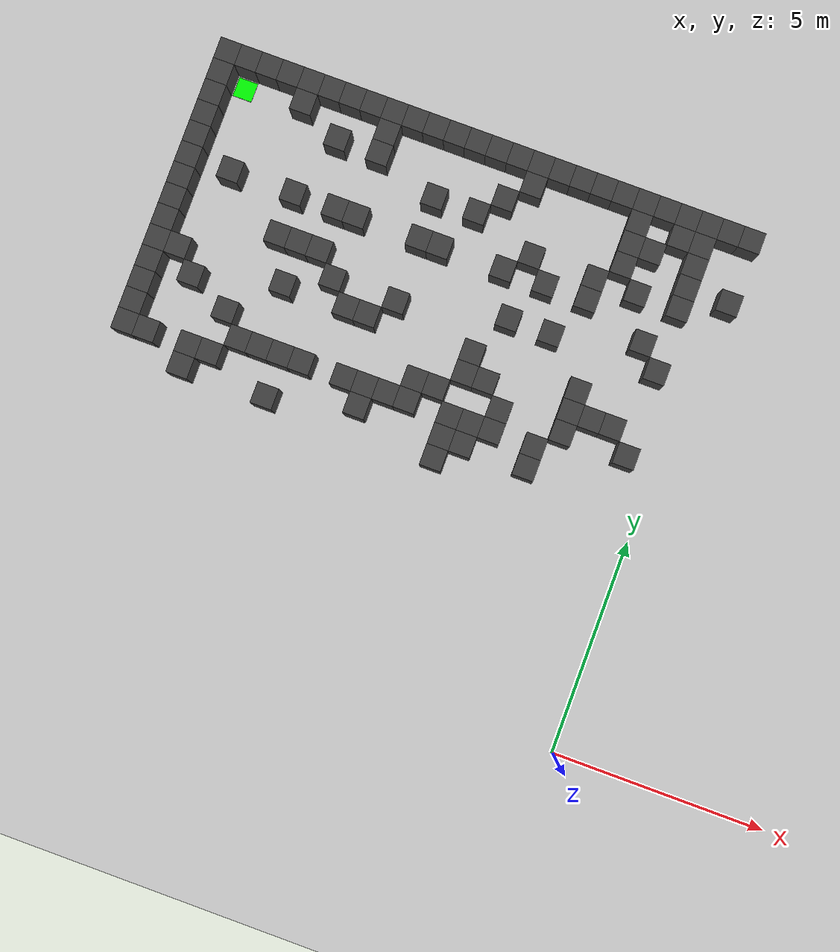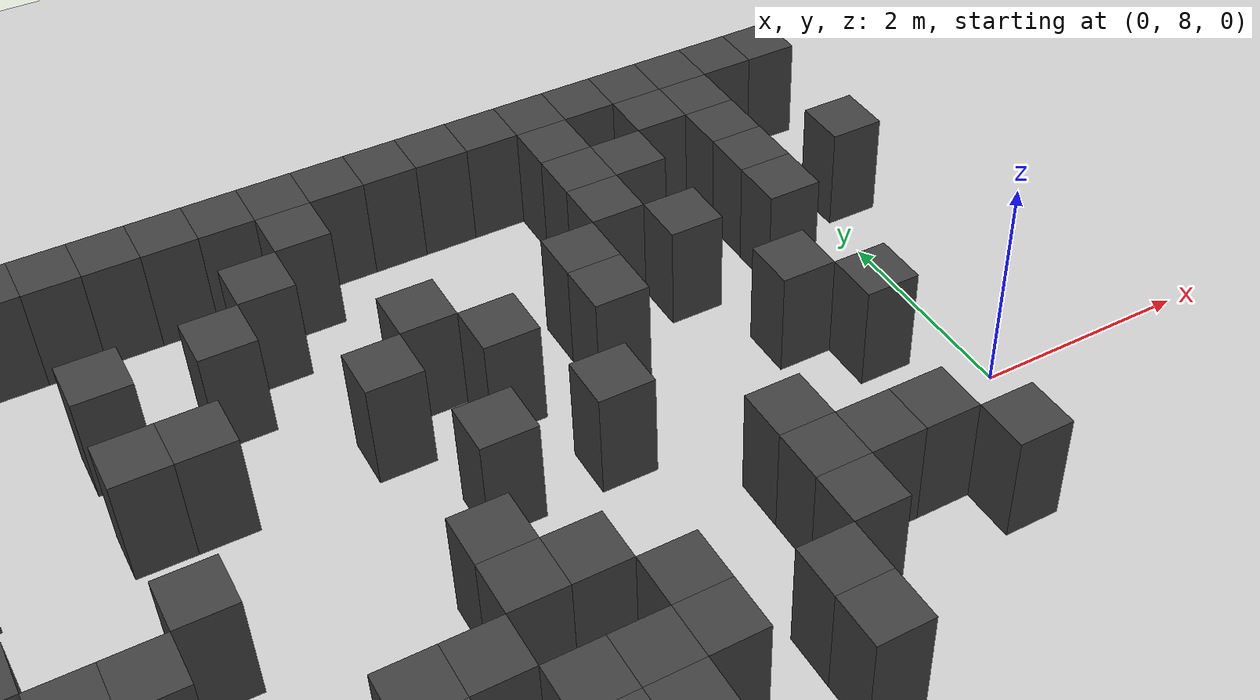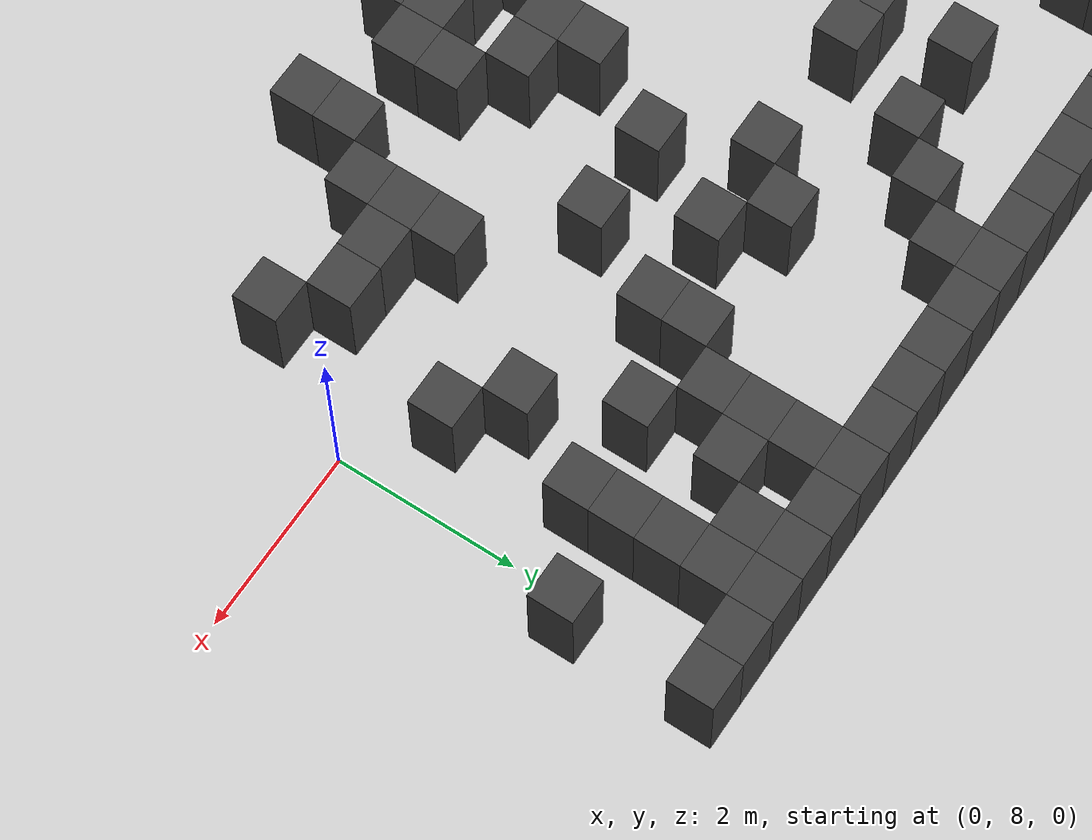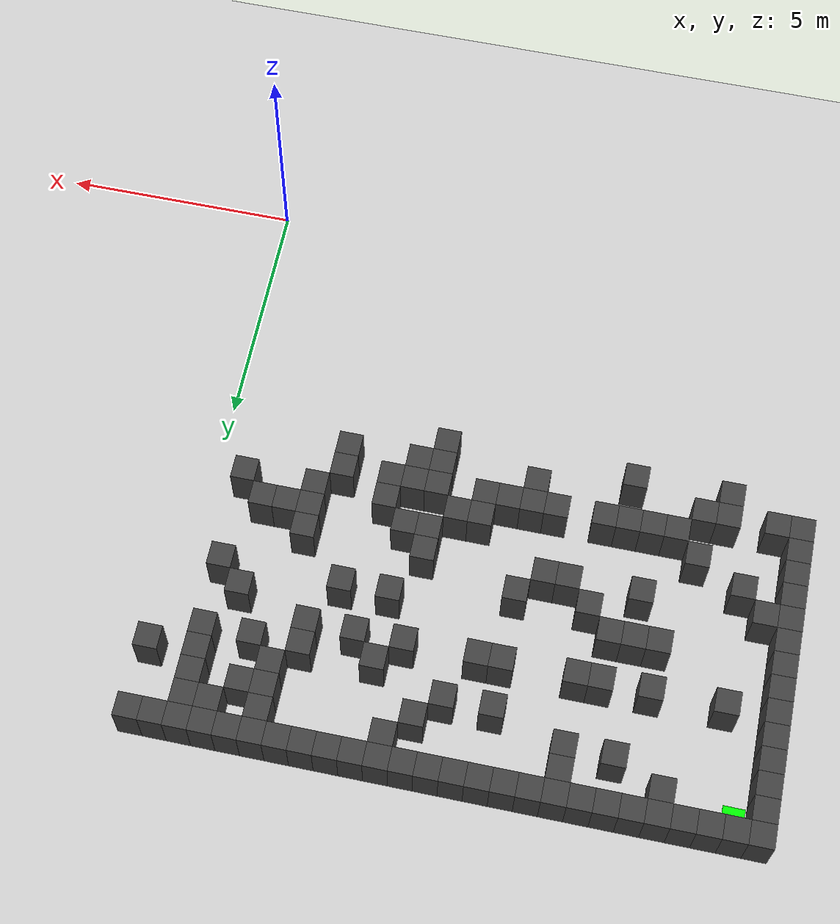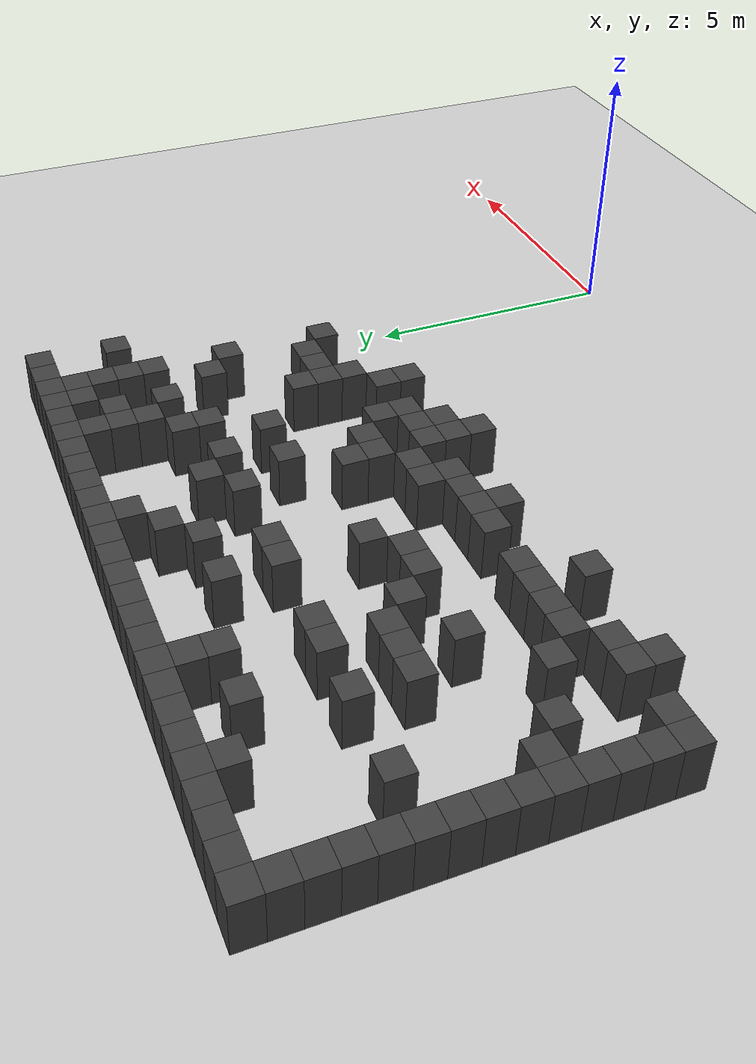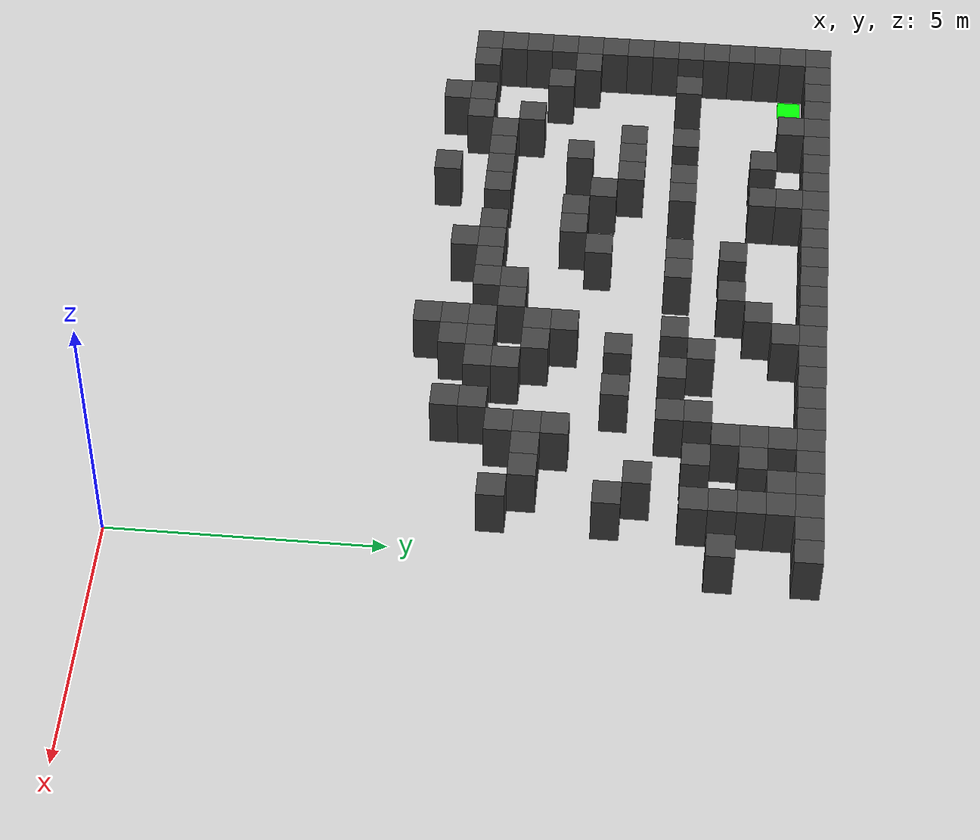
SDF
<sdf version="1.7">
 <world name="map_4682">
  <model name="ground_plane">
   <static>true</static>
   <link name="link">
    <collision name="collision">
     <geometry><plane><normal>0 0 1</normal><size>200 200</size></plane></geometry>
    </collision>
    <visual name="visual">
     <geometry><plane><normal>0 0 1</normal><size>200 200</size></plane></geometry>
     <material><ambient>0.8 0.8 0.8 1</ambient><diffuse>0.8 0.8 0.8 1</diffuse></material>
    </visual>
   </link>
  </model>
  <model name="maze_environment">
   <static>true</static>
   <link name="wall_0">
    <pose>-12.250 12.250 0.500 0 0 0</pose>
    <collision name="col"><geometry><box><size>0.5 0.5 1.0</size></box></geometry></collision>
    <visual name="vis">
     <geometry><box><size>0.5 0.5 1.0</size></box></geometry>
     <material><ambient>0.15 0.15 0.15 1</ambient><diffuse>0.25 0.25 0.25 1</diffuse></material>
    </visual>
   </link>
   <link name="wall_1">
    <pose>-11.750 12.250 0.500 0 0 0</pose>
    <collision name="col"><geometry><box><size>0.5 0.5 1.0</size></box></geometry></collision>
    <visual name="vis">
     <geometry><box><size>0.5 0.5 1.0</size></box></geometry>
     <material><ambient>0.15 0.15 0.15 1</ambient><diffuse>0.25 0.25 0.25 1</diffuse></material>
    </visual>
   </link>
   <link name="wall_2">
    <pose>-11.250 12.250 0.500 0 0 0</pose>
    <collision name="col"><geometry><box><size>0.5 0.5 1.0</size></box></geometry></collision>
    <visual name="vis">
     <geometry><box><size>0.5 0.5 1.0</size></box></geometry>
     <material><ambient>0.15 0.15 0.15 1</ambient><diffuse>0.25 0.25 0.25 1</diffuse></material>
    </visual>
   </link>
   <link name="wall_3">
    <pose>-10.750 12.250 0.500 0 0 0</pose>
    <collision name="col"><geometry><box><size>0.5 0.5 1.0</size></box></geometry></collision>
    <visual name="vis">
     <geometry><box><size>0.5 0.5 1.0</size></box></geometry>
     <material><ambient>0.15 0.15 0.15 1</ambient><diffuse>0.25 0.25 0.25 1</diffuse></material>
    </visual>
   </link>
   <link name="wall_4">
    <pose>-10.250 12.250 0.500 0 0 0</pose>
    <collision name="col"><geometry><box><size>0.5 0.5 1.0</size></box></geometry></collision>
    <visual name="vis">
     <geometry><box><size>0.5 0.5 1.0</size></box></geometry>
     <material><ambient>0.15 0.15 0.15 1</ambient><diffuse>0.25 0.25 0.25 1</diffuse></material>
    </visual>
   </link>
   <link name="wall_5">
    <pose>-9.750 12.250 0.500 0 0 0</pose>
    <collision name="col"><geometry><box><size>0.5 0.5 1.0</size></box></geometry></collision>
    <visual name="vis">
     <geometry><box><size>0.5 0.5 1.0</size></box></geometry>
     <material><ambient>0.15 0.15 0.15 1</ambient><diffuse>0.25 0.25 0.25 1</diffuse></material>
    </visual>
   </link>
   <link name="wall_6">
    <pose>-9.250 12.250 0.500 0 0 0</pose>
    <collision name="col"><geometry><box><size>0.5 0.5 1.0</size></box></geometry></collision>
    <visual name="vis">
     <geometry><box><size>0.5 0.5 1.0</size></box></geometry>
     <material><ambient>0.15 0.15 0.15 1</ambient><diffuse>0.25 0.25 0.25 1</diffuse></material>
    </visual>
   </link>
   <link name="wall_7">
    <pose>-8.750 12.250 0.500 0 0 0</pose>
    <collision name="col"><geometry><box><size>0.5 0.5 1.0</size></box></geometry></collision>
    <visual name="vis">
     <geometry><box><size>0.5 0.5 1.0</size></box></geometry>
     <material><ambient>0.15 0.15 0.15 1</ambient><diffuse>0.25 0.25 0.25 1</diffuse></material>
    </visual>
   </link>
   <link name="wall_8">
    <pose>-8.250 12.250 0.500 0 0 0</pose>
    <collision name="col"><geometry><box><size>0.5 0.5 1.0</size></box></geometry></collision>
    <visual name="vis">
     <geometry><box><size>0.5 0.5 1.0</size></box></geometry>
     <material><ambient>0.15 0.15 0.15 1</ambient><diffuse>0.25 0.25 0.25 1</diffuse></material>
    </visual>
   </link>
   <link name="wall_9">
    <pose>-7.750 12.250 0.500 0 0 0</pose>
    <collision name="col"><geometry><box><size>0.5 0.5 1.0</size></box></geometry></collision>
    <visual name="vis">
     <geometry><box><size>0.5 0.5 1.0</size></box></geometry>
     <material><ambient>0.15 0.15 0.15 1</ambient><diffuse>0.25 0.25 0.25 1</diffuse></material>
    </visual>
   </link>
   <link name="wall_10">
    <pose>-7.250 12.250 0.500 0 0 0</pose>
    <collision name="col"><geometry><box><size>0.5 0.5 1.0</size></box></geometry></collision>
    <visual name="vis">
     <geometry><box><size>0.5 0.5 1.0</size></box></geometry>
     <material><ambient>0.15 0.15 0.15 1</ambient><diffuse>0.25 0.25 0.25 1</diffuse></material>
    </visual>
   </link>
   <link name="wall_11">
    <pose>-6.750 12.250 0.500 0 0 0</pose>
    <collision name="col"><geometry><box><size>0.5 0.5 1.0</size></box></geometry></collision>
    <visual name="vis">
     <geometry><box><size>0.5 0.5 1.0</size></box></geometry>
     <material><ambient>0.15 0.15 0.15 1</ambient><diffuse>0.25 0.25 0.25 1</diffuse></material>
    </visual>
   </link>
   <link name="wall_12">
    <pose>-6.250 12.250 0.500 0 0 0</pose>
    <collision name="col"><geometry><box><size>0.5 0.5 1.0</size></box></geometry></collision>
    <visual name="vis">
     <geometry><box><size>0.5 0.5 1.0</size></box></geometry>
     <material><ambient>0.15 0.15 0.15 1</ambient><diffuse>0.25 0.25 0.25 1</diffuse></material>
    </visual>
   </link>
   <link name="wall_13">
    <pose>-5.750 12.250 0.500 0 0 0</pose>
    <collision name="col"><geometry><box><size>0.5 0.5 1.0</size></box></geometry></collision>
    <visual name="vis">
     <geometry><box><size>0.5 0.5 1.0</size></box></geometry>
     <material><ambient>0.15 0.15 0.15 1</ambient><diffuse>0.25 0.25 0.25 1</diffuse></material>
    </visual>
   </link>
   <link name="wall_14">
    <pose>-5.250 12.250 0.500 0 0 0</pose>
    <collision name="col"><geometry><box><size>0.5 0.5 1.0</size></box></geometry></collision>
    <visual name="vis">
     <geometry><box><size>0.5 0.5 1.0</size></box></geometry>
     <material><ambient>0.15 0.15 0.15 1</ambient><diffuse>0.25 0.25 0.25 1</diffuse></material>
    </visual>
   </link>
   <link name="wall_15">
    <pose>-4.750 12.250 0.500 0 0 0</pose>
    <collision name="col"><geometry><box><size>0.5 0.5 1.0</size></box></geometry></collision>
    <visual name="vis">
     <geometry><box><size>0.5 0.5 1.0</size></box></geometry>
     <material><ambient>0.15 0.15 0.15 1</ambient><diffuse>0.25 0.25 0.25 1</diffuse></material>
    </visual>
   </link>
   <link name="wall_16">
    <pose>-4.250 12.250 0.500 0 0 0</pose>
    <collision name="col"><geometry><box><size>0.5 0.5 1.0</size></box></geometry></collision>
    <visual name="vis">
     <geometry><box><size>0.5 0.5 1.0</size></box></geometry>
     <material><ambient>0.15 0.15 0.15 1</ambient><diffuse>0.25 0.25 0.25 1</diffuse></material>
    </visual>
   </link>
   <link name="wall_17">
    <pose>-3.750 12.250 0.500 0 0 0</pose>
    <collision name="col"><geometry><box><size>0.5 0.5 1.0</size></box></geometry></collision>
    <visual name="vis">
     <geometry><box><size>0.5 0.5 1.0</size></box></geometry>
     <material><ambient>0.15 0.15 0.15 1</ambient><diffuse>0.25 0.25 0.25 1</diffuse></material>
    </visual>
   </link>
   <link name="wall_18">
    <pose>-3.250 12.250 0.500 0 0 0</pose>
    <collision name="col"><geometry><box><size>0.5 0.5 1.0</size></box></geometry></collision>
    <visual name="vis">
     <geometry><box><size>0.5 0.5 1.0</size></box></geometry>
     <material><ambient>0.15 0.15 0.15 1</ambient><diffuse>0.25 0.25 0.25 1</diffuse></material>
    </visual>
   </link>
   <link name="wall_19">
    <pose>-2.750 12.250 0.500 0 0 0</pose>
    <collision name="col"><geometry><box><size>0.5 0.5 1.0</size></box></geometry></collision>
    <visual name="vis">
     <geometry><box><size>0.5 0.5 1.0</size></box></geometry>
     <material><ambient>0.15 0.15 0.15 1</ambient><diffuse>0.25 0.25 0.25 1</diffuse></material>
    </visual>
   </link>
   <link name="wall_20">
    <pose>-2.250 12.250 0.500 0 0 0</pose>
    <collision name="col"><geometry><box><size>0.5 0.5 1.0</size></box></geometry></collision>
    <visual name="vis">
     <geometry><box><size>0.5 0.5 1.0</size></box></geometry>
     <material><ambient>0.15 0.15 0.15 1</ambient><diffuse>0.25 0.25 0.25 1</diffuse></material>
    </visual>
   </link>
   <link name="wall_21">
    <pose>-1.750 12.250 0.500 0 0 0</pose>
    <collision name="col"><geometry><box><size>0.5 0.5 1.0</size></box></geometry></collision>
    <visual name="vis">
     <geometry><box><size>0.5 0.5 1.0</size></box></geometry>
     <material><ambient>0.15 0.15 0.15 1</ambient><diffuse>0.25 0.25 0.25 1</diffuse></material>
    </visual>
   </link>
   <link name="wall_22">
    <pose>-1.250 12.250 0.500 0 0 0</pose>
    <collision name="col"><geometry><box><size>0.5 0.5 1.0</size></box></geometry></collision>
    <visual name="vis">
     <geometry><box><size>0.5 0.5 1.0</size></box></geometry>
     <material><ambient>0.15 0.15 0.15 1</ambient><diffuse>0.25 0.25 0.25 1</diffuse></material>
    </visual>
   </link>
   <link name="wall_23">
    <pose>-0.750 12.250 0.500 0 0 0</pose>
    <collision name="col"><geometry><box><size>0.5 0.5 1.0</size></box></geometry></collision>
    <visual name="vis">
     <geometry><box><size>0.5 0.5 1.0</size></box></geometry>
     <material><ambient>0.15 0.15 0.15 1</ambient><diffuse>0.25 0.25 0.25 1</diffuse></material>
    </visual>
   </link>
   <link name="wall_24">
    <pose>-0.250 12.250 0.500 0 0 0</pose>
    <collision name="col"><geometry><box><size>0.5 0.5 1.0</size></box></geometry></collision>
    <visual name="vis">
     <geometry><box><size>0.5 0.5 1.0</size></box></geometry>
     <material><ambient>0.15 0.15 0.15 1</ambient><diffuse>0.25 0.25 0.25 1</diffuse></material>
    </visual>
   </link>
   <link name="wall_25">
    <pose>0.250 12.250 0.500 0 0 0</pose>
    <collision name="col"><geometry><box><size>0.5 0.5 1.0</size></box></geometry></collision>
    <visual name="vis">
     <geometry><box><size>0.5 0.5 1.0</size></box></geometry>
     <material><ambient>0.15 0.15 0.15 1</ambient><diffuse>0.25 0.25 0.25 1</diffuse></material>
    </visual>
   </link>
   <link name="wall_50">
    <pose>-12.250 11.750 0.500 0 0 0</pose>
    <collision name="col"><geometry><box><size>0.5 0.5 1.0</size></box></geometry></collision>
    <visual name="vis">
     <geometry><box><size>0.5 0.5 1.0</size></box></geometry>
     <material><ambient>0.15 0.15 0.15 1</ambient><diffuse>0.25 0.25 0.25 1</diffuse></material>
    </visual>
   </link>
   <link name="wall_51">
    <pose>-10.250 11.750 0.500 0 0 0</pose>
    <collision name="col"><geometry><box><size>0.5 0.5 1.0</size></box></geometry></collision>
    <visual name="vis">
     <geometry><box><size>0.5 0.5 1.0</size></box></geometry>
     <material><ambient>0.15 0.15 0.15 1</ambient><diffuse>0.25 0.25 0.25 1</diffuse></material>
    </visual>
   </link>
   <link name="wall_52">
    <pose>-8.250 11.750 0.500 0 0 0</pose>
    <collision name="col"><geometry><box><size>0.5 0.5 1.0</size></box></geometry></collision>
    <visual name="vis">
     <geometry><box><size>0.5 0.5 1.0</size></box></geometry>
     <material><ambient>0.15 0.15 0.15 1</ambient><diffuse>0.25 0.25 0.25 1</diffuse></material>
    </visual>
   </link>
   <link name="wall_53">
    <pose>-4.750 11.750 0.500 0 0 0</pose>
    <collision name="col"><geometry><box><size>0.5 0.5 1.0</size></box></geometry></collision>
    <visual name="vis">
     <geometry><box><size>0.5 0.5 1.0</size></box></geometry>
     <material><ambient>0.15 0.15 0.15 1</ambient><diffuse>0.25 0.25 0.25 1</diffuse></material>
    </visual>
   </link>
   <link name="wall_54">
    <pose>-2.250 11.750 0.500 0 0 0</pose>
    <collision name="col"><geometry><box><size>0.5 0.5 1.0</size></box></geometry></collision>
    <visual name="vis">
     <geometry><box><size>0.5 0.5 1.0</size></box></geometry>
     <material><ambient>0.15 0.15 0.15 1</ambient><diffuse>0.25 0.25 0.25 1</diffuse></material>
    </visual>
   </link>
   <link name="wall_55">
    <pose>-1.250 11.750 0.500 0 0 0</pose>
    <collision name="col"><geometry><box><size>0.5 0.5 1.0</size></box></geometry></collision>
    <visual name="vis">
     <geometry><box><size>0.5 0.5 1.0</size></box></geometry>
     <material><ambient>0.15 0.15 0.15 1</ambient><diffuse>0.25 0.25 0.25 1</diffuse></material>
    </visual>
   </link>
   <link name="wall_56">
    <pose>-0.750 11.750 0.500 0 0 0</pose>
    <collision name="col"><geometry><box><size>0.5 0.5 1.0</size></box></geometry></collision>
    <visual name="vis">
     <geometry><box><size>0.5 0.5 1.0</size></box></geometry>
     <material><ambient>0.15 0.15 0.15 1</ambient><diffuse>0.25 0.25 0.25 1</diffuse></material>
    </visual>
   </link>
   <link name="wall_62">
    <pose>-12.250 11.250 0.500 0 0 0</pose>
    <collision name="col"><geometry><box><size>0.5 0.5 1.0</size></box></geometry></collision>
    <visual name="vis">
     <geometry><box><size>0.5 0.5 1.0</size></box></geometry>
     <material><ambient>0.15 0.15 0.15 1</ambient><diffuse>0.25 0.25 0.25 1</diffuse></material>
    </visual>
   </link>
   <link name="wall_63">
    <pose>-9.250 11.250 0.500 0 0 0</pose>
    <collision name="col"><geometry><box><size>0.5 0.5 1.0</size></box></geometry></collision>
    <visual name="vis">
     <geometry><box><size>0.5 0.5 1.0</size></box></geometry>
     <material><ambient>0.15 0.15 0.15 1</ambient><diffuse>0.25 0.25 0.25 1</diffuse></material>
    </visual>
   </link>
   <link name="wall_64">
    <pose>-8.250 11.250 0.500 0 0 0</pose>
    <collision name="col"><geometry><box><size>0.5 0.5 1.0</size></box></geometry></collision>
    <visual name="vis">
     <geometry><box><size>0.5 0.5 1.0</size></box></geometry>
     <material><ambient>0.15 0.15 0.15 1</ambient><diffuse>0.25 0.25 0.25 1</diffuse></material>
    </visual>
   </link>
   <link name="wall_65">
    <pose>-5.250 11.250 0.500 0 0 0</pose>
    <collision name="col"><geometry><box><size>0.5 0.5 1.0</size></box></geometry></collision>
    <visual name="vis">
     <geometry><box><size>0.5 0.5 1.0</size></box></geometry>
     <material><ambient>0.15 0.15 0.15 1</ambient><diffuse>0.25 0.25 0.25 1</diffuse></material>
    </visual>
   </link>
   <link name="wall_66">
    <pose>-2.250 11.250 0.500 0 0 0</pose>
    <collision name="col"><geometry><box><size>0.5 0.5 1.0</size></box></geometry></collision>
    <visual name="vis">
     <geometry><box><size>0.5 0.5 1.0</size></box></geometry>
     <material><ambient>0.15 0.15 0.15 1</ambient><diffuse>0.25 0.25 0.25 1</diffuse></material>
    </visual>
   </link>
   <link name="wall_67">
    <pose>-1.750 11.250 0.500 0 0 0</pose>
    <collision name="col"><geometry><box><size>0.5 0.5 1.0</size></box></geometry></collision>
    <visual name="vis">
     <geometry><box><size>0.5 0.5 1.0</size></box></geometry>
     <material><ambient>0.15 0.15 0.15 1</ambient><diffuse>0.25 0.25 0.25 1</diffuse></material>
    </visual>
   </link>
   <link name="wall_68">
    <pose>-0.750 11.250 0.500 0 0 0</pose>
    <collision name="col"><geometry><box><size>0.5 0.5 1.0</size></box></geometry></collision>
    <visual name="vis">
     <geometry><box><size>0.5 0.5 1.0</size></box></geometry>
     <material><ambient>0.15 0.15 0.15 1</ambient><diffuse>0.25 0.25 0.25 1</diffuse></material>
    </visual>
   </link>
   <link name="wall_75">
    <pose>-12.250 10.750 0.500 0 0 0</pose>
    <collision name="col"><geometry><box><size>0.5 0.5 1.0</size></box></geometry></collision>
    <visual name="vis">
     <geometry><box><size>0.5 0.5 1.0</size></box></geometry>
     <material><ambient>0.15 0.15 0.15 1</ambient><diffuse>0.25 0.25 0.25 1</diffuse></material>
    </visual>
   </link>
   <link name="wall_76">
    <pose>-6.750 10.750 0.500 0 0 0</pose>
    <collision name="col"><geometry><box><size>0.5 0.5 1.0</size></box></geometry></collision>
    <visual name="vis">
     <geometry><box><size>0.5 0.5 1.0</size></box></geometry>
     <material><ambient>0.15 0.15 0.15 1</ambient><diffuse>0.25 0.25 0.25 1</diffuse></material>
    </visual>
   </link>
   <link name="wall_77">
    <pose>-5.750 10.750 0.500 0 0 0</pose>
    <collision name="col"><geometry><box><size>0.5 0.5 1.0</size></box></geometry></collision>
    <visual name="vis">
     <geometry><box><size>0.5 0.5 1.0</size></box></geometry>
     <material><ambient>0.15 0.15 0.15 1</ambient><diffuse>0.25 0.25 0.25 1</diffuse></material>
    </visual>
   </link>
   <link name="wall_78">
    <pose>-2.250 10.750 0.500 0 0 0</pose>
    <collision name="col"><geometry><box><size>0.5 0.5 1.0</size></box></geometry></collision>
    <visual name="vis">
     <geometry><box><size>0.5 0.5 1.0</size></box></geometry>
     <material><ambient>0.15 0.15 0.15 1</ambient><diffuse>0.25 0.25 0.25 1</diffuse></material>
    </visual>
   </link>
   <link name="wall_79">
    <pose>-0.750 10.750 0.500 0 0 0</pose>
    <collision name="col"><geometry><box><size>0.5 0.5 1.0</size></box></geometry></collision>
    <visual name="vis">
     <geometry><box><size>0.5 0.5 1.0</size></box></geometry>
     <material><ambient>0.15 0.15 0.15 1</ambient><diffuse>0.25 0.25 0.25 1</diffuse></material>
    </visual>
   </link>
   <link name="wall_80">
    <pose>0.250 10.750 0.500 0 0 0</pose>
    <collision name="col"><geometry><box><size>0.5 0.5 1.0</size></box></geometry></collision>
    <visual name="vis">
     <geometry><box><size>0.5 0.5 1.0</size></box></geometry>
     <material><ambient>0.15 0.15 0.15 1</ambient><diffuse>0.25 0.25 0.25 1</diffuse></material>
    </visual>
   </link>
   <link name="wall_89">
    <pose>-12.250 10.250 0.500 0 0 0</pose>
    <collision name="col"><geometry><box><size>0.5 0.5 1.0</size></box></geometry></collision>
    <visual name="vis">
     <geometry><box><size>0.5 0.5 1.0</size></box></geometry>
     <material><ambient>0.15 0.15 0.15 1</ambient><diffuse>0.25 0.25 0.25 1</diffuse></material>
    </visual>
   </link>
   <link name="wall_90">
    <pose>-4.250 10.250 0.500 0 0 0</pose>
    <collision name="col"><geometry><box><size>0.5 0.5 1.0</size></box></geometry></collision>
    <visual name="vis">
     <geometry><box><size>0.5 0.5 1.0</size></box></geometry>
     <material><ambient>0.15 0.15 0.15 1</ambient><diffuse>0.25 0.25 0.25 1</diffuse></material>
    </visual>
   </link>
   <link name="wall_91">
    <pose>-2.750 10.250 0.500 0 0 0</pose>
    <collision name="col"><geometry><box><size>0.5 0.5 1.0</size></box></geometry></collision>
    <visual name="vis">
     <geometry><box><size>0.5 0.5 1.0</size></box></geometry>
     <material><ambient>0.15 0.15 0.15 1</ambient><diffuse>0.25 0.25 0.25 1</diffuse></material>
    </visual>
   </link>
   <link name="wall_92">
    <pose>-1.750 10.250 0.500 0 0 0</pose>
    <collision name="col"><geometry><box><size>0.5 0.5 1.0</size></box></geometry></collision>
    <visual name="vis">
     <geometry><box><size>0.5 0.5 1.0</size></box></geometry>
     <material><ambient>0.15 0.15 0.15 1</ambient><diffuse>0.25 0.25 0.25 1</diffuse></material>
    </visual>
   </link>
   <link name="wall_93">
    <pose>-0.750 10.250 0.500 0 0 0</pose>
    <collision name="col"><geometry><box><size>0.5 0.5 1.0</size></box></geometry></collision>
    <visual name="vis">
     <geometry><box><size>0.5 0.5 1.0</size></box></geometry>
     <material><ambient>0.15 0.15 0.15 1</ambient><diffuse>0.25 0.25 0.25 1</diffuse></material>
    </visual>
   </link>
   <link name="wall_102">
    <pose>-12.250 9.750 0.500 0 0 0</pose>
    <collision name="col"><geometry><box><size>0.5 0.5 1.0</size></box></geometry></collision>
    <visual name="vis">
     <geometry><box><size>0.5 0.5 1.0</size></box></geometry>
     <material><ambient>0.15 0.15 0.15 1</ambient><diffuse>0.25 0.25 0.25 1</diffuse></material>
    </visual>
   </link>
   <link name="wall_103">
    <pose>-11.250 9.750 0.500 0 0 0</pose>
    <collision name="col"><geometry><box><size>0.5 0.5 1.0</size></box></geometry></collision>
    <visual name="vis">
     <geometry><box><size>0.5 0.5 1.0</size></box></geometry>
     <material><ambient>0.15 0.15 0.15 1</ambient><diffuse>0.25 0.25 0.25 1</diffuse></material>
    </visual>
   </link>
   <link name="wall_104">
    <pose>-9.750 9.750 0.500 0 0 0</pose>
    <collision name="col"><geometry><box><size>0.5 0.5 1.0</size></box></geometry></collision>
    <visual name="vis">
     <geometry><box><size>0.5 0.5 1.0</size></box></geometry>
     <material><ambient>0.15 0.15 0.15 1</ambient><diffuse>0.25 0.25 0.25 1</diffuse></material>
    </visual>
   </link>
   <link name="wall_105">
    <pose>-8.750 9.750 0.500 0 0 0</pose>
    <collision name="col"><geometry><box><size>0.5 0.5 1.0</size></box></geometry></collision>
    <visual name="vis">
     <geometry><box><size>0.5 0.5 1.0</size></box></geometry>
     <material><ambient>0.15 0.15 0.15 1</ambient><diffuse>0.25 0.25 0.25 1</diffuse></material>
    </visual>
   </link>
   <link name="wall_106">
    <pose>-8.250 9.750 0.500 0 0 0</pose>
    <collision name="col"><geometry><box><size>0.5 0.5 1.0</size></box></geometry></collision>
    <visual name="vis">
     <geometry><box><size>0.5 0.5 1.0</size></box></geometry>
     <material><ambient>0.15 0.15 0.15 1</ambient><diffuse>0.25 0.25 0.25 1</diffuse></material>
    </visual>
   </link>
   <link name="wall_107">
    <pose>-6.750 9.750 0.500 0 0 0</pose>
    <collision name="col"><geometry><box><size>0.5 0.5 1.0</size></box></geometry></collision>
    <visual name="vis">
     <geometry><box><size>0.5 0.5 1.0</size></box></geometry>
     <material><ambient>0.15 0.15 0.15 1</ambient><diffuse>0.25 0.25 0.25 1</diffuse></material>
    </visual>
   </link>
   <link name="wall_108">
    <pose>-6.250 9.750 0.500 0 0 0</pose>
    <collision name="col"><geometry><box><size>0.5 0.5 1.0</size></box></geometry></collision>
    <visual name="vis">
     <geometry><box><size>0.5 0.5 1.0</size></box></geometry>
     <material><ambient>0.15 0.15 0.15 1</ambient><diffuse>0.25 0.25 0.25 1</diffuse></material>
    </visual>
   </link>
   <link name="wall_109">
    <pose>-4.750 9.750 0.500 0 0 0</pose>
    <collision name="col"><geometry><box><size>0.5 0.5 1.0</size></box></geometry></collision>
    <visual name="vis">
     <geometry><box><size>0.5 0.5 1.0</size></box></geometry>
     <material><ambient>0.15 0.15 0.15 1</ambient><diffuse>0.25 0.25 0.25 1</diffuse></material>
    </visual>
   </link>
   <link name="wall_110">
    <pose>-3.750 9.750 0.500 0 0 0</pose>
    <collision name="col"><geometry><box><size>0.5 0.5 1.0</size></box></geometry></collision>
    <visual name="vis">
     <geometry><box><size>0.5 0.5 1.0</size></box></geometry>
     <material><ambient>0.15 0.15 0.15 1</ambient><diffuse>0.25 0.25 0.25 1</diffuse></material>
    </visual>
   </link>
   <link name="wall_111">
    <pose>-2.750 9.750 0.500 0 0 0</pose>
    <collision name="col"><geometry><box><size>0.5 0.5 1.0</size></box></geometry></collision>
    <visual name="vis">
     <geometry><box><size>0.5 0.5 1.0</size></box></geometry>
     <material><ambient>0.15 0.15 0.15 1</ambient><diffuse>0.25 0.25 0.25 1</diffuse></material>
    </visual>
   </link>
   <link name="wall_124">
    <pose>-12.250 9.250 0.500 0 0 0</pose>
    <collision name="col"><geometry><box><size>0.5 0.5 1.0</size></box></geometry></collision>
    <visual name="vis">
     <geometry><box><size>0.5 0.5 1.0</size></box></geometry>
     <material><ambient>0.15 0.15 0.15 1</ambient><diffuse>0.25 0.25 0.25 1</diffuse></material>
    </visual>
   </link>
   <link name="wall_125">
    <pose>-1.250 9.250 0.500 0 0 0</pose>
    <collision name="col"><geometry><box><size>0.5 0.5 1.0</size></box></geometry></collision>
    <visual name="vis">
     <geometry><box><size>0.5 0.5 1.0</size></box></geometry>
     <material><ambient>0.15 0.15 0.15 1</ambient><diffuse>0.25 0.25 0.25 1</diffuse></material>
    </visual>
   </link>
   <link name="wall_130">
    <pose>-12.250 8.750 0.500 0 0 0</pose>
    <collision name="col"><geometry><box><size>0.5 0.5 1.0</size></box></geometry></collision>
    <visual name="vis">
     <geometry><box><size>0.5 0.5 1.0</size></box></geometry>
     <material><ambient>0.15 0.15 0.15 1</ambient><diffuse>0.25 0.25 0.25 1</diffuse></material>
    </visual>
   </link>
   <link name="wall_131">
    <pose>-9.750 8.750 0.500 0 0 0</pose>
    <collision name="col"><geometry><box><size>0.5 0.5 1.0</size></box></geometry></collision>
    <visual name="vis">
     <geometry><box><size>0.5 0.5 1.0</size></box></geometry>
     <material><ambient>0.15 0.15 0.15 1</ambient><diffuse>0.25 0.25 0.25 1</diffuse></material>
    </visual>
   </link>
   <link name="wall_132">
    <pose>-9.250 8.750 0.500 0 0 0</pose>
    <collision name="col"><geometry><box><size>0.5 0.5 1.0</size></box></geometry></collision>
    <visual name="vis">
     <geometry><box><size>0.5 0.5 1.0</size></box></geometry>
     <material><ambient>0.15 0.15 0.15 1</ambient><diffuse>0.25 0.25 0.25 1</diffuse></material>
    </visual>
   </link>
   <link name="wall_133">
    <pose>-8.750 8.750 0.500 0 0 0</pose>
    <collision name="col"><geometry><box><size>0.5 0.5 1.0</size></box></geometry></collision>
    <visual name="vis">
     <geometry><box><size>0.5 0.5 1.0</size></box></geometry>
     <material><ambient>0.15 0.15 0.15 1</ambient><diffuse>0.25 0.25 0.25 1</diffuse></material>
    </visual>
   </link>
   <link name="wall_134">
    <pose>-4.250 8.750 0.500 0 0 0</pose>
    <collision name="col"><geometry><box><size>0.5 0.5 1.0</size></box></geometry></collision>
    <visual name="vis">
     <geometry><box><size>0.5 0.5 1.0</size></box></geometry>
     <material><ambient>0.15 0.15 0.15 1</ambient><diffuse>0.25 0.25 0.25 1</diffuse></material>
    </visual>
   </link>
   <link name="wall_135">
    <pose>-3.250 8.750 0.500 0 0 0</pose>
    <collision name="col"><geometry><box><size>0.5 0.5 1.0</size></box></geometry></collision>
    <visual name="vis">
     <geometry><box><size>0.5 0.5 1.0</size></box></geometry>
     <material><ambient>0.15 0.15 0.15 1</ambient><diffuse>0.25 0.25 0.25 1</diffuse></material>
    </visual>
   </link>
   <link name="wall_136">
    <pose>-0.750 8.750 0.500 0 0 0</pose>
    <collision name="col"><geometry><box><size>0.5 0.5 1.0</size></box></geometry></collision>
    <visual name="vis">
     <geometry><box><size>0.5 0.5 1.0</size></box></geometry>
     <material><ambient>0.15 0.15 0.15 1</ambient><diffuse>0.25 0.25 0.25 1</diffuse></material>
    </visual>
   </link>
   <link name="wall_142">
    <pose>-12.250 8.250 0.500 0 0 0</pose>
    <collision name="col"><geometry><box><size>0.5 0.5 1.0</size></box></geometry></collision>
    <visual name="vis">
     <geometry><box><size>0.5 0.5 1.0</size></box></geometry>
     <material><ambient>0.15 0.15 0.15 1</ambient><diffuse>0.25 0.25 0.25 1</diffuse></material>
    </visual>
   </link>
   <link name="wall_143">
    <pose>-8.250 8.250 0.500 0 0 0</pose>
    <collision name="col"><geometry><box><size>0.5 0.5 1.0</size></box></geometry></collision>
    <visual name="vis">
     <geometry><box><size>0.5 0.5 1.0</size></box></geometry>
     <material><ambient>0.15 0.15 0.15 1</ambient><diffuse>0.25 0.25 0.25 1</diffuse></material>
    </visual>
   </link>
   <link name="wall_144">
    <pose>-6.750 8.250 0.500 0 0 0</pose>
    <collision name="col"><geometry><box><size>0.5 0.5 1.0</size></box></geometry></collision>
    <visual name="vis">
     <geometry><box><size>0.5 0.5 1.0</size></box></geometry>
     <material><ambient>0.15 0.15 0.15 1</ambient><diffuse>0.25 0.25 0.25 1</diffuse></material>
    </visual>
   </link>
   <link name="wall_146">
    <pose>-12.250 7.750 0.500 0 0 0</pose>
    <collision name="col"><geometry><box><size>0.5 0.5 1.0</size></box></geometry></collision>
    <visual name="vis">
     <geometry><box><size>0.5 0.5 1.0</size></box></geometry>
     <material><ambient>0.15 0.15 0.15 1</ambient><diffuse>0.25 0.25 0.25 1</diffuse></material>
    </visual>
   </link>
   <link name="wall_147">
    <pose>-11.750 7.750 0.500 0 0 0</pose>
    <collision name="col"><geometry><box><size>0.5 0.5 1.0</size></box></geometry></collision>
    <visual name="vis">
     <geometry><box><size>0.5 0.5 1.0</size></box></geometry>
     <material><ambient>0.15 0.15 0.15 1</ambient><diffuse>0.25 0.25 0.25 1</diffuse></material>
    </visual>
   </link>
   <link name="wall_148">
    <pose>-9.250 7.750 0.500 0 0 0</pose>
    <collision name="col"><geometry><box><size>0.5 0.5 1.0</size></box></geometry></collision>
    <visual name="vis">
     <geometry><box><size>0.5 0.5 1.0</size></box></geometry>
     <material><ambient>0.15 0.15 0.15 1</ambient><diffuse>0.25 0.25 0.25 1</diffuse></material>
    </visual>
   </link>
   <link name="wall_149">
    <pose>-7.750 7.750 0.500 0 0 0</pose>
    <collision name="col"><geometry><box><size>0.5 0.5 1.0</size></box></geometry></collision>
    <visual name="vis">
     <geometry><box><size>0.5 0.5 1.0</size></box></geometry>
     <material><ambient>0.15 0.15 0.15 1</ambient><diffuse>0.25 0.25 0.25 1</diffuse></material>
    </visual>
   </link>
   <link name="wall_150">
    <pose>-7.250 7.750 0.500 0 0 0</pose>
    <collision name="col"><geometry><box><size>0.5 0.5 1.0</size></box></geometry></collision>
    <visual name="vis">
     <geometry><box><size>0.5 0.5 1.0</size></box></geometry>
     <material><ambient>0.15 0.15 0.15 1</ambient><diffuse>0.25 0.25 0.25 1</diffuse></material>
    </visual>
   </link>
   <link name="wall_151">
    <pose>-4.750 7.750 0.500 0 0 0</pose>
    <collision name="col"><geometry><box><size>0.5 0.5 1.0</size></box></geometry></collision>
    <visual name="vis">
     <geometry><box><size>0.5 0.5 1.0</size></box></geometry>
     <material><ambient>0.15 0.15 0.15 1</ambient><diffuse>0.25 0.25 0.25 1</diffuse></material>
    </visual>
   </link>
   <link name="wall_152">
    <pose>-2.250 7.750 0.500 0 0 0</pose>
    <collision name="col"><geometry><box><size>0.5 0.5 1.0</size></box></geometry></collision>
    <visual name="vis">
     <geometry><box><size>0.5 0.5 1.0</size></box></geometry>
     <material><ambient>0.15 0.15 0.15 1</ambient><diffuse>0.25 0.25 0.25 1</diffuse></material>
    </visual>
   </link>
   <link name="wall_160">
    <pose>-12.250 7.250 0.500 0 0 0</pose>
    <collision name="col"><geometry><box><size>0.5 0.5 1.0</size></box></geometry></collision>
    <visual name="vis">
     <geometry><box><size>0.5 0.5 1.0</size></box></geometry>
     <material><ambient>0.15 0.15 0.15 1</ambient><diffuse>0.25 0.25 0.25 1</diffuse></material>
    </visual>
   </link>
   <link name="wall_161">
    <pose>-11.250 7.250 0.500 0 0 0</pose>
    <collision name="col"><geometry><box><size>0.5 0.5 1.0</size></box></geometry></collision>
    <visual name="vis">
     <geometry><box><size>0.5 0.5 1.0</size></box></geometry>
     <material><ambient>0.15 0.15 0.15 1</ambient><diffuse>0.25 0.25 0.25 1</diffuse></material>
    </visual>
   </link>
   <link name="wall_162">
    <pose>-4.750 7.250 0.500 0 0 0</pose>
    <collision name="col"><geometry><box><size>0.5 0.5 1.0</size></box></geometry></collision>
    <visual name="vis">
     <geometry><box><size>0.5 0.5 1.0</size></box></geometry>
     <material><ambient>0.15 0.15 0.15 1</ambient><diffuse>0.25 0.25 0.25 1</diffuse></material>
    </visual>
   </link>
   <link name="wall_163">
    <pose>-4.250 7.250 0.500 0 0 0</pose>
    <collision name="col"><geometry><box><size>0.5 0.5 1.0</size></box></geometry></collision>
    <visual name="vis">
     <geometry><box><size>0.5 0.5 1.0</size></box></geometry>
     <material><ambient>0.15 0.15 0.15 1</ambient><diffuse>0.25 0.25 0.25 1</diffuse></material>
    </visual>
   </link>
   <link name="wall_164">
    <pose>-2.250 7.250 0.500 0 0 0</pose>
    <collision name="col"><geometry><box><size>0.5 0.5 1.0</size></box></geometry></collision>
    <visual name="vis">
     <geometry><box><size>0.5 0.5 1.0</size></box></geometry>
     <material><ambient>0.15 0.15 0.15 1</ambient><diffuse>0.25 0.25 0.25 1</diffuse></material>
    </visual>
   </link>
   <link name="wall_165">
    <pose>-1.750 7.250 0.500 0 0 0</pose>
    <collision name="col"><geometry><box><size>0.5 0.5 1.0</size></box></geometry></collision>
    <visual name="vis">
     <geometry><box><size>0.5 0.5 1.0</size></box></geometry>
     <material><ambient>0.15 0.15 0.15 1</ambient><diffuse>0.25 0.25 0.25 1</diffuse></material>
    </visual>
   </link>
   <link name="wall_166">
    <pose>-1.250 7.250 0.500 0 0 0</pose>
    <collision name="col"><geometry><box><size>0.5 0.5 1.0</size></box></geometry></collision>
    <visual name="vis">
     <geometry><box><size>0.5 0.5 1.0</size></box></geometry>
     <material><ambient>0.15 0.15 0.15 1</ambient><diffuse>0.25 0.25 0.25 1</diffuse></material>
    </visual>
   </link>
   <link name="wall_172">
    <pose>-12.250 6.750 0.500 0 0 0</pose>
    <collision name="col"><geometry><box><size>0.5 0.5 1.0</size></box></geometry></collision>
    <visual name="vis">
     <geometry><box><size>0.5 0.5 1.0</size></box></geometry>
     <material><ambient>0.15 0.15 0.15 1</ambient><diffuse>0.25 0.25 0.25 1</diffuse></material>
    </visual>
   </link>
   <link name="wall_173">
    <pose>-10.250 6.750 0.500 0 0 0</pose>
    <collision name="col"><geometry><box><size>0.5 0.5 1.0</size></box></geometry></collision>
    <visual name="vis">
     <geometry><box><size>0.5 0.5 1.0</size></box></geometry>
     <material><ambient>0.15 0.15 0.15 1</ambient><diffuse>0.25 0.25 0.25 1</diffuse></material>
    </visual>
   </link>
   <link name="wall_174">
    <pose>-5.750 6.750 0.500 0 0 0</pose>
    <collision name="col"><geometry><box><size>0.5 0.5 1.0</size></box></geometry></collision>
    <visual name="vis">
     <geometry><box><size>0.5 0.5 1.0</size></box></geometry>
     <material><ambient>0.15 0.15 0.15 1</ambient><diffuse>0.25 0.25 0.25 1</diffuse></material>
    </visual>
   </link>
   <link name="wall_175">
    <pose>-5.250 6.750 0.500 0 0 0</pose>
    <collision name="col"><geometry><box><size>0.5 0.5 1.0</size></box></geometry></collision>
    <visual name="vis">
     <geometry><box><size>0.5 0.5 1.0</size></box></geometry>
     <material><ambient>0.15 0.15 0.15 1</ambient><diffuse>0.25 0.25 0.25 1</diffuse></material>
    </visual>
   </link>
   <link name="wall_176">
    <pose>-3.750 6.750 0.500 0 0 0</pose>
    <collision name="col"><geometry><box><size>0.5 0.5 1.0</size></box></geometry></collision>
    <visual name="vis">
     <geometry><box><size>0.5 0.5 1.0</size></box></geometry>
     <material><ambient>0.15 0.15 0.15 1</ambient><diffuse>0.25 0.25 0.25 1</diffuse></material>
    </visual>
   </link>
   <link name="wall_177">
    <pose>-2.250 6.750 0.500 0 0 0</pose>
    <collision name="col"><geometry><box><size>0.5 0.5 1.0</size></box></geometry></collision>
    <visual name="vis">
     <geometry><box><size>0.5 0.5 1.0</size></box></geometry>
     <material><ambient>0.15 0.15 0.15 1</ambient><diffuse>0.25 0.25 0.25 1</diffuse></material>
    </visual>
   </link>
   <link name="wall_178">
    <pose>-0.750 6.750 0.500 0 0 0</pose>
    <collision name="col"><geometry><box><size>0.5 0.5 1.0</size></box></geometry></collision>
    <visual name="vis">
     <geometry><box><size>0.5 0.5 1.0</size></box></geometry>
     <material><ambient>0.15 0.15 0.15 1</ambient><diffuse>0.25 0.25 0.25 1</diffuse></material>
    </visual>
   </link>
   <link name="wall_184">
    <pose>-12.250 6.250 0.500 0 0 0</pose>
    <collision name="col"><geometry><box><size>0.5 0.5 1.0</size></box></geometry></collision>
    <visual name="vis">
     <geometry><box><size>0.5 0.5 1.0</size></box></geometry>
     <material><ambient>0.15 0.15 0.15 1</ambient><diffuse>0.25 0.25 0.25 1</diffuse></material>
    </visual>
   </link>
   <link name="wall_185">
    <pose>-9.750 6.250 0.500 0 0 0</pose>
    <collision name="col"><geometry><box><size>0.5 0.5 1.0</size></box></geometry></collision>
    <visual name="vis">
     <geometry><box><size>0.5 0.5 1.0</size></box></geometry>
     <material><ambient>0.15 0.15 0.15 1</ambient><diffuse>0.25 0.25 0.25 1</diffuse></material>
    </visual>
   </link>
   <link name="wall_186">
    <pose>-9.250 6.250 0.500 0 0 0</pose>
    <collision name="col"><geometry><box><size>0.5 0.5 1.0</size></box></geometry></collision>
    <visual name="vis">
     <geometry><box><size>0.5 0.5 1.0</size></box></geometry>
     <material><ambient>0.15 0.15 0.15 1</ambient><diffuse>0.25 0.25 0.25 1</diffuse></material>
    </visual>
   </link>
   <link name="wall_187">
    <pose>-8.750 6.250 0.500 0 0 0</pose>
    <collision name="col"><geometry><box><size>0.5 0.5 1.0</size></box></geometry></collision>
    <visual name="vis">
     <geometry><box><size>0.5 0.5 1.0</size></box></geometry>
     <material><ambient>0.15 0.15 0.15 1</ambient><diffuse>0.25 0.25 0.25 1</diffuse></material>
    </visual>
   </link>
   <link name="wall_188">
    <pose>-8.250 6.250 0.500 0 0 0</pose>
    <collision name="col"><geometry><box><size>0.5 0.5 1.0</size></box></geometry></collision>
    <visual name="vis">
     <geometry><box><size>0.5 0.5 1.0</size></box></geometry>
     <material><ambient>0.15 0.15 0.15 1</ambient><diffuse>0.25 0.25 0.25 1</diffuse></material>
    </visual>
   </link>
   <link name="wall_189">
    <pose>-7.250 6.250 0.500 0 0 0</pose>
    <collision name="col"><geometry><box><size>0.5 0.5 1.0</size></box></geometry></collision>
    <visual name="vis">
     <geometry><box><size>0.5 0.5 1.0</size></box></geometry>
     <material><ambient>0.15 0.15 0.15 1</ambient><diffuse>0.25 0.25 0.25 1</diffuse></material>
    </visual>
   </link>
   <link name="wall_190">
    <pose>-6.750 6.250 0.500 0 0 0</pose>
    <collision name="col"><geometry><box><size>0.5 0.5 1.0</size></box></geometry></collision>
    <visual name="vis">
     <geometry><box><size>0.5 0.5 1.0</size></box></geometry>
     <material><ambient>0.15 0.15 0.15 1</ambient><diffuse>0.25 0.25 0.25 1</diffuse></material>
    </visual>
   </link>
   <link name="wall_191">
    <pose>-6.250 6.250 0.500 0 0 0</pose>
    <collision name="col"><geometry><box><size>0.5 0.5 1.0</size></box></geometry></collision>
    <visual name="vis">
     <geometry><box><size>0.5 0.5 1.0</size></box></geometry>
     <material><ambient>0.15 0.15 0.15 1</ambient><diffuse>0.25 0.25 0.25 1</diffuse></material>
    </visual>
   </link>
   <link name="wall_192">
    <pose>-5.750 6.250 0.500 0 0 0</pose>
    <collision name="col"><geometry><box><size>0.5 0.5 1.0</size></box></geometry></collision>
    <visual name="vis">
     <geometry><box><size>0.5 0.5 1.0</size></box></geometry>
     <material><ambient>0.15 0.15 0.15 1</ambient><diffuse>0.25 0.25 0.25 1</diffuse></material>
    </visual>
   </link>
   <link name="wall_193">
    <pose>-4.750 6.250 0.500 0 0 0</pose>
    <collision name="col"><geometry><box><size>0.5 0.5 1.0</size></box></geometry></collision>
    <visual name="vis">
     <geometry><box><size>0.5 0.5 1.0</size></box></geometry>
     <material><ambient>0.15 0.15 0.15 1</ambient><diffuse>0.25 0.25 0.25 1</diffuse></material>
    </visual>
   </link>
   <link name="wall_194">
    <pose>-4.250 6.250 0.500 0 0 0</pose>
    <collision name="col"><geometry><box><size>0.5 0.5 1.0</size></box></geometry></collision>
    <visual name="vis">
     <geometry><box><size>0.5 0.5 1.0</size></box></geometry>
     <material><ambient>0.15 0.15 0.15 1</ambient><diffuse>0.25 0.25 0.25 1</diffuse></material>
    </visual>
   </link>
   <link name="wall_195">
    <pose>-3.750 6.250 0.500 0 0 0</pose>
    <collision name="col"><geometry><box><size>0.5 0.5 1.0</size></box></geometry></collision>
    <visual name="vis">
     <geometry><box><size>0.5 0.5 1.0</size></box></geometry>
     <material><ambient>0.15 0.15 0.15 1</ambient><diffuse>0.25 0.25 0.25 1</diffuse></material>
    </visual>
   </link>
   <link name="wall_196">
    <pose>-2.750 6.250 0.500 0 0 0</pose>
    <collision name="col"><geometry><box><size>0.5 0.5 1.0</size></box></geometry></collision>
    <visual name="vis">
     <geometry><box><size>0.5 0.5 1.0</size></box></geometry>
     <material><ambient>0.15 0.15 0.15 1</ambient><diffuse>0.25 0.25 0.25 1</diffuse></material>
    </visual>
   </link>
   <link name="wall_202">
    <pose>-12.250 5.750 0.500 0 0 0</pose>
    <collision name="col"><geometry><box><size>0.5 0.5 1.0</size></box></geometry></collision>
    <visual name="vis">
     <geometry><box><size>0.5 0.5 1.0</size></box></geometry>
     <material><ambient>0.15 0.15 0.15 1</ambient><diffuse>0.25 0.25 0.25 1</diffuse></material>
    </visual>
   </link>
   <link name="wall_203">
    <pose>-11.750 5.750 0.500 0 0 0</pose>
    <collision name="col"><geometry><box><size>0.5 0.5 1.0</size></box></geometry></collision>
    <visual name="vis">
     <geometry><box><size>0.5 0.5 1.0</size></box></geometry>
     <material><ambient>0.15 0.15 0.15 1</ambient><diffuse>0.25 0.25 0.25 1</diffuse></material>
    </visual>
   </link>
   <link name="wall_204">
    <pose>-10.750 5.750 0.500 0 0 0</pose>
    <collision name="col"><geometry><box><size>0.5 0.5 1.0</size></box></geometry></collision>
    <visual name="vis">
     <geometry><box><size>0.5 0.5 1.0</size></box></geometry>
     <material><ambient>0.15 0.15 0.15 1</ambient><diffuse>0.25 0.25 0.25 1</diffuse></material>
    </visual>
   </link>
   <link name="wall_205">
    <pose>-10.250 5.750 0.500 0 0 0</pose>
    <collision name="col"><geometry><box><size>0.5 0.5 1.0</size></box></geometry></collision>
    <visual name="vis">
     <geometry><box><size>0.5 0.5 1.0</size></box></geometry>
     <material><ambient>0.15 0.15 0.15 1</ambient><diffuse>0.25 0.25 0.25 1</diffuse></material>
    </visual>
   </link>
   <link name="wall_206">
    <pose>-6.750 5.750 0.500 0 0 0</pose>
    <collision name="col"><geometry><box><size>0.5 0.5 1.0</size></box></geometry></collision>
    <visual name="vis">
     <geometry><box><size>0.5 0.5 1.0</size></box></geometry>
     <material><ambient>0.15 0.15 0.15 1</ambient><diffuse>0.25 0.25 0.25 1</diffuse></material>
    </visual>
   </link>
   <link name="wall_207">
    <pose>-4.750 5.750 0.500 0 0 0</pose>
    <collision name="col"><geometry><box><size>0.5 0.5 1.0</size></box></geometry></collision>
    <visual name="vis">
     <geometry><box><size>0.5 0.5 1.0</size></box></geometry>
     <material><ambient>0.15 0.15 0.15 1</ambient><diffuse>0.25 0.25 0.25 1</diffuse></material>
    </visual>
   </link>
   <link name="wall_208">
    <pose>-4.250 5.750 0.500 0 0 0</pose>
    <collision name="col"><geometry><box><size>0.5 0.5 1.0</size></box></geometry></collision>
    <visual name="vis">
     <geometry><box><size>0.5 0.5 1.0</size></box></geometry>
     <material><ambient>0.15 0.15 0.15 1</ambient><diffuse>0.25 0.25 0.25 1</diffuse></material>
    </visual>
   </link>
   <link name="wall_209">
    <pose>-2.750 5.750 0.500 0 0 0</pose>
    <collision name="col"><geometry><box><size>0.5 0.5 1.0</size></box></geometry></collision>
    <visual name="vis">
     <geometry><box><size>0.5 0.5 1.0</size></box></geometry>
     <material><ambient>0.15 0.15 0.15 1</ambient><diffuse>0.25 0.25 0.25 1</diffuse></material>
    </visual>
   </link>
   <link name="wall_216">
    <pose>-10.750 5.250 0.500 0 0 0</pose>
    <collision name="col"><geometry><box><size>0.5 0.5 1.0</size></box></geometry></collision>
    <visual name="vis">
     <geometry><box><size>0.5 0.5 1.0</size></box></geometry>
     <material><ambient>0.15 0.15 0.15 1</ambient><diffuse>0.25 0.25 0.25 1</diffuse></material>
    </visual>
   </link>
   <link name="wall_217">
    <pose>-8.750 5.250 0.500 0 0 0</pose>
    <collision name="col"><geometry><box><size>0.5 0.5 1.0</size></box></geometry></collision>
    <visual name="vis">
     <geometry><box><size>0.5 0.5 1.0</size></box></geometry>
     <material><ambient>0.15 0.15 0.15 1</ambient><diffuse>0.25 0.25 0.25 1</diffuse></material>
    </visual>
   </link>
   <link name="wall_218">
    <pose>-4.750 5.250 0.500 0 0 0</pose>
    <collision name="col"><geometry><box><size>0.5 0.5 1.0</size></box></geometry></collision>
    <visual name="vis">
     <geometry><box><size>0.5 0.5 1.0</size></box></geometry>
     <material><ambient>0.15 0.15 0.15 1</ambient><diffuse>0.25 0.25 0.25 1</diffuse></material>
    </visual>
   </link>
   <link name="start_zone">
    <pose>-11.750 11.750 0.005 0 0 0</pose>
    <visual name="vis">
     <geometry><box><size>0.45 0.45 0.01</size></box></geometry>
     <material>
      <ambient>0.0 1.0 0.0 1</ambient>
      <diffuse>0.0 1.0 0.0 1</diffuse>
      <emissive>0.00 0.60 0.00 1</emissive>
     </material>
    </visual>
   </link>
  </model>
 </world>
</sdf>
